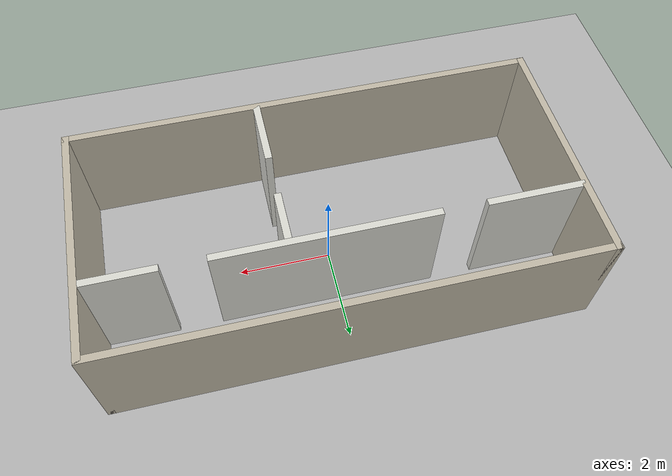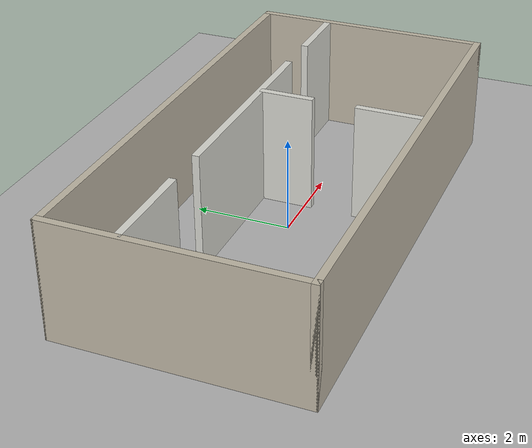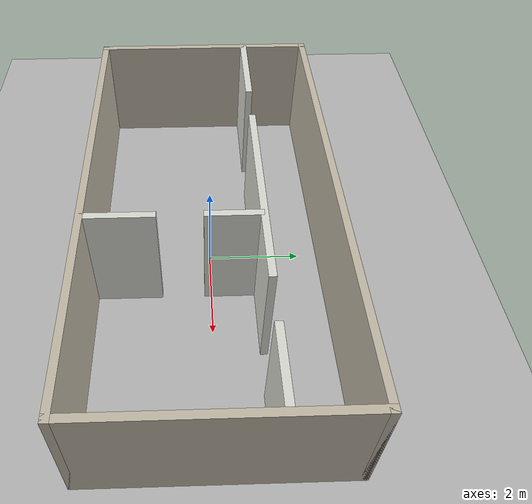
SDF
<?xml version="1.0" ?>
<sdf version="1.9">
  <world name="default">

    <plugin filename="gz-sim-physics-system" name="gz::sim::systems::Physics"/>
    <plugin filename="gz-sim-user-commands-system" name="gz::sim::systems::UserCommands"/>
    <plugin filename="gz-sim-scene-broadcaster-system" name="gz::sim::systems::SceneBroadcaster"/>

    <plugin filename="gz-sim-sensors-system" name="gz::sim::systems::Sensors">
      <render_engine>ogre2</render_engine>
    </plugin>

    <light name="sun" type="directional">
      <cast_shadows>true</cast_shadows>
      <pose>0 0 10 0 0 0</pose>
      <diffuse>0.8 0.8 0.8 1</diffuse>
      <specular>0.2 0.2 0.2 1</specular>
      <direction>-0.5 0.1 -0.9</direction>
    </light>

    <model name="ground_plane">
      <static>true</static>
      <link name="link">
        <collision name="collision">
          <geometry>
            <plane>
              <normal>0 0 1</normal>
              <size>100 100</size>
            </plane>
          </geometry>
        </collision>
        <visual name="visual">
          <geometry>
            <plane>
              <normal>0 0 1</normal>
              <size>100 100</size>
            </plane>
          </geometry>
          <material>
            <ambient>0.7 0.7 0.7 1</ambient>
            <diffuse>0.7 0.7 0.7 1</diffuse>
          </material>
        </visual>
      </link>
    </model>

    <model name="wall_south">
      <static>true</static>
      <pose>0 -2.5 1.25 0 0 0</pose>
      <link name="link">
        <collision name="collision"><geometry><box><size>10.15 0.15 2.5</size></box></geometry></collision>
        <visual name="visual">
          <geometry><box><size>10.15 0.15 2.5</size></box></geometry>
          <material><ambient>0.75 0.72 0.65 1</ambient><diffuse>0.75 0.72 0.65 1</diffuse></material>
        </visual>
      </link>
    </model>

    <model name="wall_north">
      <static>true</static>
      <pose>0 2.5 1.25 0 0 0</pose>
      <link name="link">
        <collision name="collision"><geometry><box><size>10.15 0.15 2.5</size></box></geometry></collision>
        <visual name="visual">
          <geometry><box><size>10.15 0.15 2.5</size></box></geometry>
          <material><ambient>0.75 0.72 0.65 1</ambient><diffuse>0.75 0.72 0.65 1</diffuse></material>
        </visual>
      </link>
    </model>

    <model name="wall_west">
      <static>true</static>
      <pose>-5 0 1.25 0 0 0</pose>
      <link name="link">
        <collision name="collision"><geometry><box><size>0.15 5.15 2.5</size></box></geometry></collision>
        <visual name="visual">
          <geometry><box><size>0.15 5.15 2.5</size></box></geometry>
          <material><ambient>0.75 0.72 0.65 1</ambient><diffuse>0.75 0.72 0.65 1</diffuse></material>
        </visual>
      </link>
    </model>

    <model name="wall_east">
      <static>true</static>
      <pose>5 0 1.25 0 0 0</pose>
      <link name="link">
        <collision name="collision"><geometry><box><size>0.15 5.15 2.5</size></box></geometry></collision>
        <visual name="visual">
          <geometry><box><size>0.15 5.15 2.5</size></box></geometry>
          <material><ambient>0.75 0.72 0.65 1</ambient><diffuse>0.75 0.72 0.65 1</diffuse></material>
        </visual>
      </link>
    </model>

    <model name="divider_c_1">
      <static>true</static>
      <pose>-3.975 1.0 1.25 0 0 0</pose>
      <link name="link">
        <collision name="collision"><geometry><box><size>2.05 0.15 2.5</size></box></geometry></collision>
        <visual name="visual">
          <geometry><box><size>2.05 0.15 2.5</size></box></geometry>
          <material><ambient>0.85 0.85 0.82 1</ambient><diffuse>0.85 0.85 0.82 1</diffuse></material>
        </visual>
      </link>
    </model>

    <model name="divider_c_2">
      <static>true</static>
      <pose>0.25 1.0 1.25 0 0 0</pose>
      <link name="link">
        <collision name="collision"><geometry><box><size>4.6 0.15 2.5</size></box></geometry></collision>
        <visual name="visual">
          <geometry><box><size>4.6 0.15 2.5</size></box></geometry>
          <material><ambient>0.85 0.85 0.82 1</ambient><diffuse>0.85 0.85 0.82 1</diffuse></material>
        </visual>
      </link>
    </model>

    <model name="divider_c_3">
      <static>true</static>
      <pose>4.225 1.0 1.25 0 0 0</pose>
      <link name="link">
        <collision name="collision"><geometry><box><size>1.55 0.15 2.5</size></box></geometry></collision>
        <visual name="visual">
          <geometry><box><size>1.55 0.15 2.5</size></box></geometry>
          <material><ambient>0.85 0.85 0.82 1</ambient><diffuse>0.85 0.85 0.82 1</diffuse></material>
        </visual>
      </link>
    </model>

    <model name="divider_ab_1">
      <static>true</static>
      <pose>1.0 -1.775 1.25 0 0 0</pose>
      <link name="link">
        <collision name="collision"><geometry><box><size>0.15 1.45 2.5</size></box></geometry></collision>
        <visual name="visual">
          <geometry><box><size>0.15 1.45 2.5</size></box></geometry>
          <material><ambient>0.85 0.85 0.82 1</ambient><diffuse>0.85 0.85 0.82 1</diffuse></material>
        </visual>
      </link>
    </model>

    <model name="divider_ab_2">
      <static>true</static>
      <pose>1.0 0.425 1.25 0 0 0</pose>
      <link name="link">
        <collision name="collision"><geometry><box><size>0.15 1.15 2.5</size></box></geometry></collision>
        <visual name="visual">
          <geometry><box><size>0.15 1.15 2.5</size></box></geometry>
          <material><ambient>0.85 0.85 0.82 1</ambient><diffuse>0.85 0.85 0.82 1</diffuse></material>
        </visual>
      </link>
    </model>

  </world>
</sdf>
